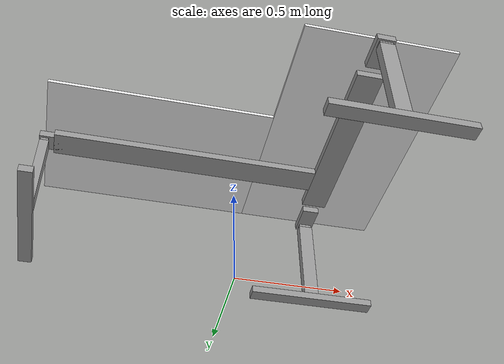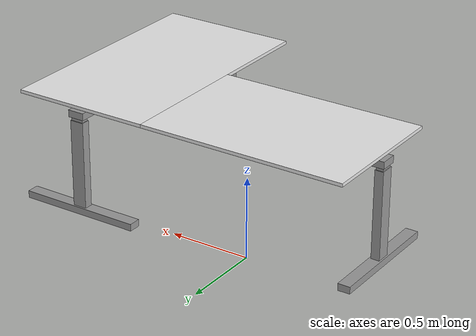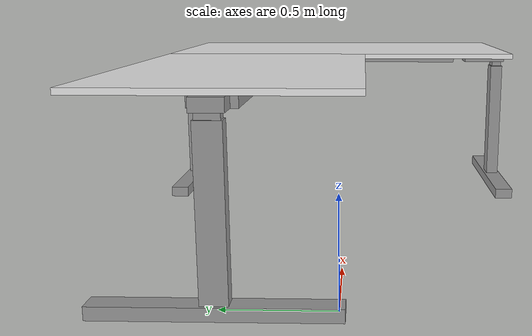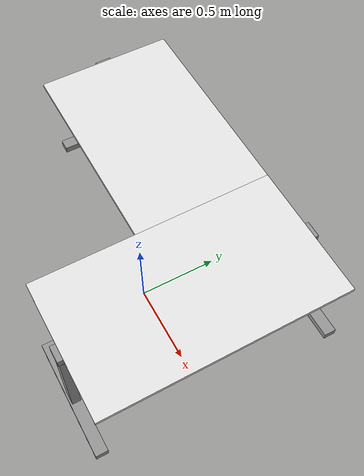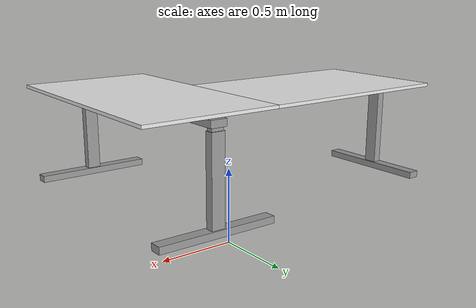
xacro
<?xml version="1.0"?>
<robot xmlns:xacro="http://www.ros.org/wiki/xacro" name="fokus_cube">

	<xacro:include filename="$(find niels_homeoffice)/urdf/niels_desk.xacro" />
	<xacro:include filename="$(find niels_homeoffice)/urdf/niels_desk_leg.xacro" />

	<link name="base_link" />

	<xacro:niels_desk prefix="" connected_to="base_link" />

	<xacro:niels_desk_leg prefix="1st_" connected_to="frame_link" connected_to_xyz="-1.0 0.300 0.0" connected_to_rpy="0 0 -1.5708" />
	<xacro:niels_desk_leg prefix="2nd_" connected_to="frame_link" connected_to_xyz="0.600 0.7 0.0" connected_to_rpy="0 0 3.1416" />
	<xacro:niels_desk_leg prefix="3rd_" connected_to="frame_link" connected_to_xyz="0.600 -0.7 0.0" connected_to_rpy="0 0 0" />

	<joint name="world_joint" type="fixed">
		<parent link="base_link" />
		<child link="frame_link" />
		<origin xyz="0.0 0.0 1.000" rpy="0.0 0.0 0.0" />
	</joint>
</robot>

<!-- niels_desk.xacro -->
<robot xmlns:xacro="http://www.ros.org/wiki/xacro">
	<xacro:macro name="niels_desk" params="prefix connected_to">

        <xacro:include filename="$(find niels_homeoffice)/urdf/niels_desk_leg.xacro" />

		<xacro:property name="PI" value="3.14159265359" />

        <xacro:property name="center_x" value="1.000" />
        <xacro:property name="center_y" value="0.700" />

        <xacro:property name="beam_length_left" value="1.500" />
        <xacro:property name="beam_length_right" value="1.000" />
        <xacro:property name="beam_width" value="0.140" />
        <xacro:property name="beam_height" value="0.040" />

        <xacro:property name="plate_length_left" value="1.200" />
        <xacro:property name="plate_length_right" value="1.400" />
        <xacro:property name="plate_width" value="0.800" />
        <xacro:property name="plate_height" value="0.019" />

		<!-- Links -->

		<link name="${prefix}plate_link">
            <inertial>
                <origin xyz="0 0 0" rpy="0 0 0" />
                <mass value="1.2" />
                <inertia ixx="0.0015" ixy="0.0" ixz="0.0" iyy="0.0015" iyz="0.0" izz="0.0015"/>
            </inertial>
            <!-- left -->
            <visual>
                <origin xyz="-0.400 0.300 0" rpy="0 0 0" />
                <geometry>
                    <box size="${plate_length_left} ${plate_width} ${plate_height}" />
                </geometry>
            </visual>
            <collision>
                <origin xyz="-0.400 0.300 0" rpy="0 0 0" />
                <geometry>
                    <box size="${plate_length_left} ${plate_width} ${plate_height}" />
                </geometry>
            </collision>
            <!-- right -->
            <visual>
                <origin xyz="0.600 0 0" rpy="0 0 ${PI / 2}" />
                <geometry>
                    <box size="${plate_length_right} ${plate_width} ${plate_height}" />
                </geometry>
            </visual>
            <collision>
                <origin xyz="0.600 0 0" rpy="0 0 ${PI / 2}" />
                <geometry>
                    <box size="${plate_length_right} ${plate_width} ${plate_height}" />
                </geometry>
            </collision>
        </link>

        <link name="${prefix}frame_link">
            <inertial>
                <origin xyz="0 0 0" rpy="0 0 0" />
                <mass value="0.8" />
                <inertia ixx="0.0015" ixy="0.0" ixz="0.0" iyy="0.0015" iyz="0.0" izz="0.0015"/>
            </inertial>
            <!-- left beam -->
            <visual>
                <origin xyz="-0.200 0.300 0" rpy="0 0 0" />
                <geometry>
                    <box size="${beam_length_left} ${beam_width} ${beam_height}" />
                </geometry>
            </visual>
            <collision>
                <origin xyz="-0.2000 0.300 0" rpy="0 0 0" />
                <geometry>
                    <box size="${beam_length_left} ${beam_width} ${beam_height}" />
                </geometry>
            </collision>
            <!-- right beam -->
            <visual>
                <origin xyz="0.600 0 0" rpy="0 0 ${PI / 2}" />
                <geometry>
                    <box size="${beam_length_right} ${beam_width} ${beam_height}" />
                </geometry>
            </visual>
            <collision>
                <origin xyz="0.600 0 0" rpy="0 0 ${PI / 2}" />
                <geometry>
                    <box size="${beam_length_right} ${beam_width} ${beam_height}" />
                </geometry>
            </collision>
        </link>

		<!--Joints -->

		<joint name="${prefix}frame_plate_joint" type="fixed">
			<parent link="${prefix}frame_link" />
			<child link="${prefix}plate_link" />
			<origin xyz="0 0 ${(beam_height + plate_height) / 2}" rpy="0 0 0" />
		</joint>

        <gazebo reference="frame_link">
            <material>Gazebo/Grey</material>
        </gazebo>
        <gazebo reference="plate_link">
            <material>Gazebo/White</material>
        </gazebo>
	</xacro:macro>
</robot>

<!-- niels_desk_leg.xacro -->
<robot xmlns:xacro="http://www.ros.org/wiki/xacro">
    <xacro:macro name="niels_desk_leg" params="prefix connected_to connected_to_xyz connected_to_rpy">

        <link name="${prefix}upper_limb_link">
            <inertial>
                <origin xyz="0 0 0" rpy="0 0 0" />
                <mass value="0.4" />
                <inertia ixx="0.0" ixy="0.0" ixz="0.0" iyy="0.0" iyz="0.0" izz="0.0"/>
            </inertial>
            <visual>
                <origin xyz="0 0.0575 0" rpy="0 0 0" />
                <geometry>
                    <box size="0.095 0.175 0.040" />
                </geometry>
            </visual>
            <collision>
                <origin xyz="0 0.0575 0" rpy="0 0 0" />
                <geometry>
                    <box size="0.095 0.175 0.040" />
                </geometry>
            </collision>
            <visual>
                <origin xyz="0 0 -0.220" rpy="0 0 0" />
                <geometry>
                    <box size="0.070 0.040 0.400" />
                </geometry>
            </visual>
            <collision>
                <origin xyz="0 0 -0.220" rpy="0 0 0" />
                <geometry>
                    <box size="0.070 0.040 0.400" />
                </geometry>
            </collision>
        </link>

        <link name="${prefix}lower_limb_link">
            <inertial>
                <origin xyz="0 0 0" rpy="0 0 0" />
                <mass value="0.3" />
                <inertia ixx="0.0" ixy="0.0" ixz="0.0" iyy="0.0" iyz="0.0" izz="0.0"/>
            </inertial>
            <visual>
                <origin xyz="0 0 0" rpy="0 0 0" />
                <geometry>
                    <box size="0.075 0.045 0.400" />
                </geometry>
            </visual>
            <collision>
                <origin xyz="0 0 0" rpy="0 0 0" />
                <geometry>
                    <box size="0.075 0.045 0.400" />
                </geometry>
            </collision>
        </link>

        <link name="${prefix}foot_link">
            <inertial>
                <origin xyz="0 0 0" rpy="0 0 0" />
                <mass value="0.3" />
                <inertia ixx="0.0" ixy="0.0" ixz="0.0" iyy="0.0" iyz="0.0" izz="0.0"/>
            </inertial>
            <!-- foot -->
            <visual>
                <origin xyz="0 0 0.020" rpy="0 0 0" />
                <geometry>
                    <box size="0.700 0.070 0.040" />
                </geometry>
            </visual>
            <collision>
                <origin xyz="0 0 0.020" rpy="0 0 0" />
                <geometry>
                    <box size="0.700 0.070 0.040" />
                </geometry>
            </collision>
            <!-- ankle -->
            <visual>
                <origin xyz="0 0 0.290" rpy="0 0 0" />
                <geometry>
                    <box size="0.080 0.050 0.500" />
                </geometry>
            </visual>
            <collision>
                <origin xyz="0 0 0.290" rpy="0 0 0" />
                <geometry>
                    <box size="0.080 0.050 0.500" />
                </geometry>
            </collision>
        </link>

		<!--Joints -->

		<joint name="${prefix}hip_joint" type="fixed">
			<parent link="${connected_to}" />
			<child link="${prefix}upper_limb_link" />
			<origin xyz="${connected_to_xyz}" rpy="${connected_to_rpy}" />
		</joint>

		<joint name="${prefix}knee_joint" type="prismatic">
			<parent link="${prefix}upper_limb_link" />
			<child link="${prefix}lower_limb_link" />
			<origin xyz="0 0 -0.280" rpy="0 0 0" />
			<axis xyz="0 0 1" />
			<limit effort="100.0" velocity="3.0" lower="-0.280" upper="0" />
			<dynamics damping="0.1" friction="0.0" />
		</joint>

		<joint name="${prefix}ankle_joint" type="prismatic">
			<parent link="${prefix}lower_limb_link" />
			<child link="${prefix}foot_link" />
			<origin xyz="0 0 -0.300" rpy="0 0 0" />
			<limit effort="100.0" velocity="3.0" lower="-0.280" upper="0" />
			<axis xyz="0 0 1" />
			<dynamics damping="0.1" friction="0.0" />
		</joint>

        <gazebo reference="${prefix}upper_limb_link">
            <material>Gazebo/Grey</material>
        </gazebo>
        <gazebo reference="${prefix}lower_limb_link">
            <material>Gazebo/Grey</material>
        </gazebo>
        <gazebo reference="${prefix}foot_link">
            <material>Gazebo/Grey</material>
        </gazebo>
    </xacro:macro>
</robot>
